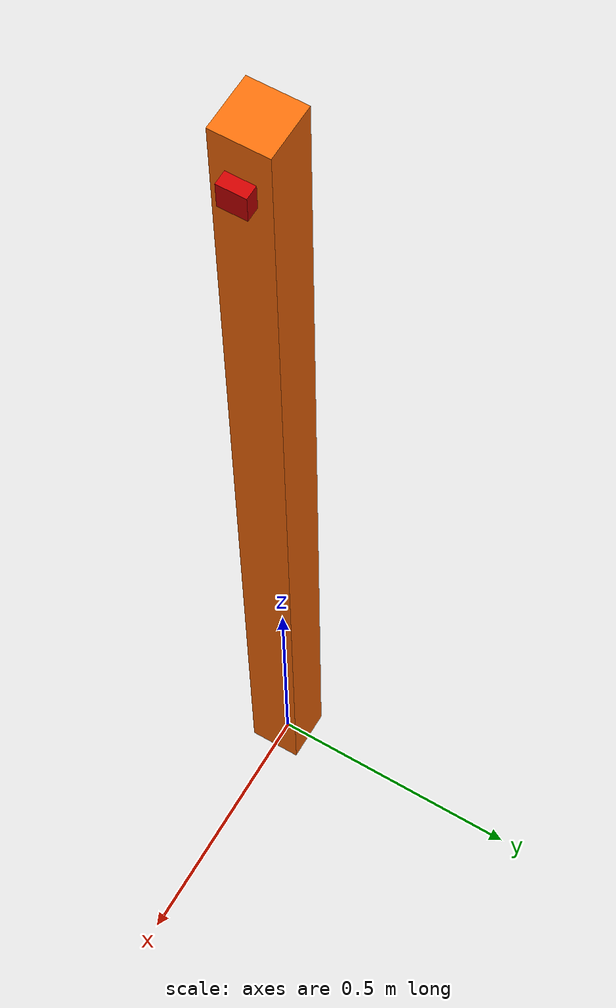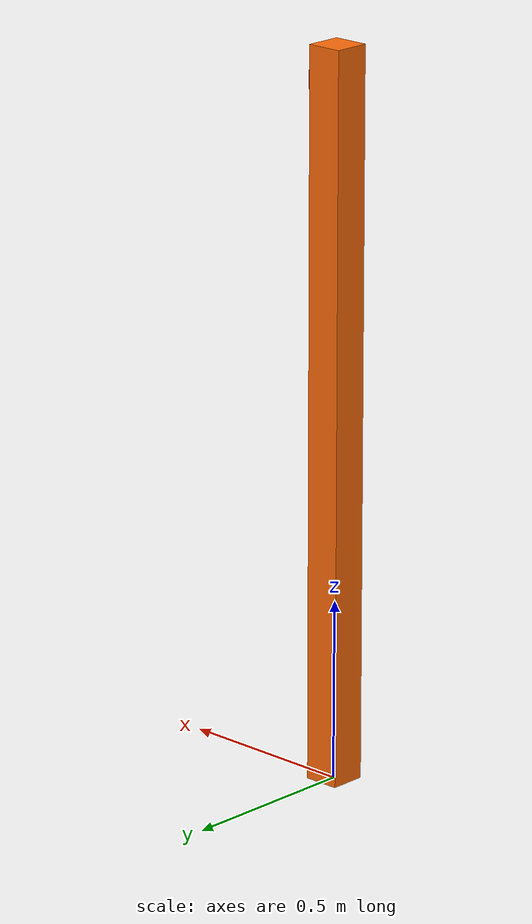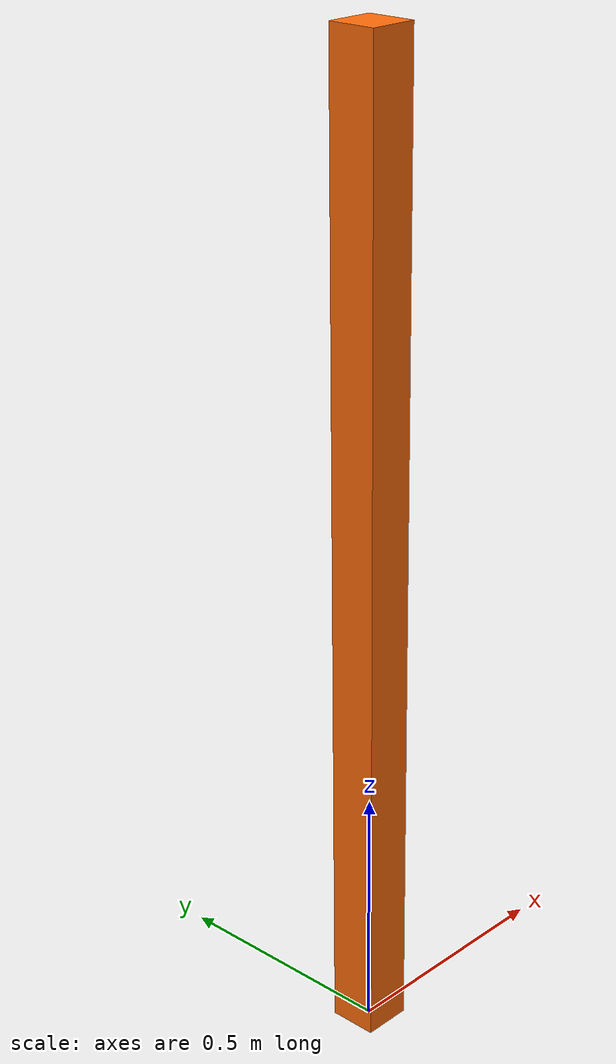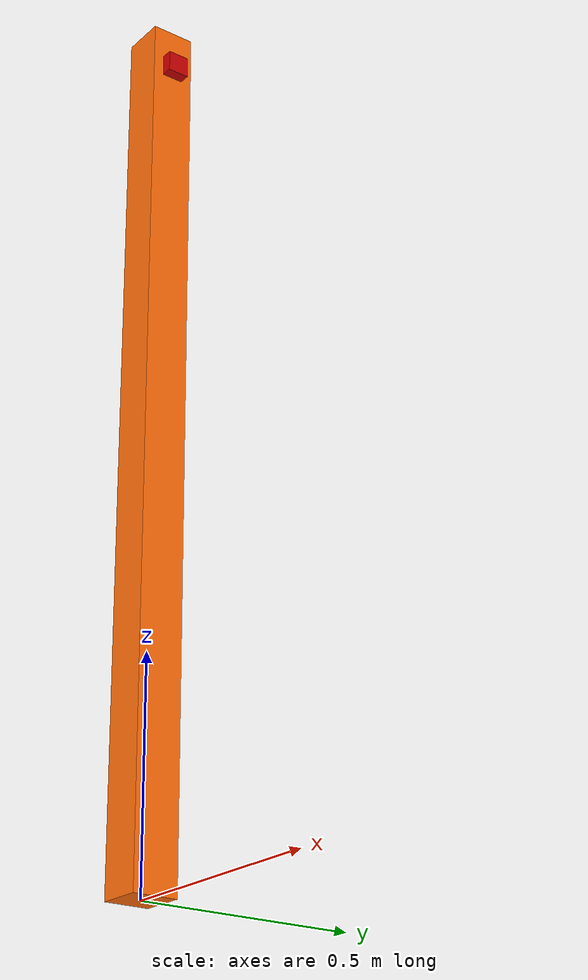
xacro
<?xml version="1.0"?>
<!-- Revolute-Revolute Manipulator -->
<robot name="rrbot" xmlns:xacro="http://www.ros.org/wiki/xacro">

  <!-- Constants for robot dimensions -->
  <xacro:property name="PI" value="3.1415926535897931"/>
  <xacro:property name="mass" value="1" /> <!-- arbitrary value for mass -->
  <xacro:property name="width" value="0.1" /> <!-- Square dimensions (widthxwidth) of beams -->
  <xacro:property name="height1" value="2" /> <!-- Link 1 -->
  <xacro:property name="camera_link" value="0.05" /> <!-- Size of square 'camera' box -->
  <xacro:property name="axel_offset" value="0.05" /> <!-- Space btw top of beam and the each joint -->

  <!-- Used for fixing robot to Gazebo 'base_link' -->
  <link name="world"/>

  <joint name="fixed" type="fixed">
    <parent link="world"/>
    <child link="link1"/>
  </joint>

  <!-- Base Link -->
  <link name="link1">
    <collision>
      <origin xyz="0 0 ${height1/2}" rpy="0 0 0"/>
      <geometry>
	<box size="${width} ${width} ${height1}"/>
      </geometry>
    </collision>

    <visual>
      <origin xyz="0 0 ${height1/2}" rpy="0 0 0"/>
      <geometry>
	<box size="${width} ${width} ${height1}"/>
      </geometry>
      <material name="orange"/>
    </visual>

    <inertial>
      <origin xyz="0 0 ${height1/2}" rpy="0 0 0"/>
      <mass value="${mass}"/>
      <inertia
	  ixx="${mass / 12.0 * (width*width + height1*height1)}" ixy="0.0" ixz="0.0"
	  iyy="${mass / 12.0 * (height1*height1 + width*width)}" iyz="0.0"
	  izz="${mass / 12.0 * (width*width + width*width)}"/>
    </inertial>
  </link>

  <joint name="camera_joint" type="fixed">
    <axis xyz="0 1 0" />
    <origin xyz="${camera_link} 0 ${height1 - axel_offset*2}" rpy="0 0 0"/>
    <parent link="link1"/>
    <child link="camera_link"/>
  </joint>

  <!-- Camera -->
  <link name="camera_link">
    <collision>
      <origin xyz="0 0 0" rpy="0 0 0"/>
      <geometry>
	<box size="${camera_link} ${camera_link} ${camera_link}"/>
      </geometry>
    </collision>

    <visual>
      <origin xyz="0 0 0" rpy="0 0 0"/>
      <geometry>
	<box size="${camera_link} ${camera_link} ${camera_link}"/>
      </geometry>
      <material name="red"/>
    </visual>

    <inertial>
      <mass value="1e-5" />
      <origin xyz="0 0 0" rpy="0 0 0"/>
      <inertia ixx="1e-6" ixy="0" ixz="0" iyy="1e-6" iyz="0" izz="1e-6" />
    </inertial>
  </link>

  <!-- generate an optical frame http://www.ros.org/reps/rep-0103.html#suffix-frames
      so that ros and opencv can operate on the camera frame correctly -->
  <joint name="camera_optical_joint" type="fixed">
    <!-- these values have to be these values otherwise the gazebo camera image
        won't be aligned properly with the frame it is supposedly originating from -->
    <origin xyz="0 0 0" rpy="${-pi/2} 0 ${-pi/2}"/>
    <parent link="camera_link"/>
    <child link="camera_link_optical"/>
  </joint>

  <link name="camera_link_optical">
  </link>

  <!-- camera -->
  <gazebo reference="camera_link">
    <sensor type="camera" name="camera1">
      <update_rate>30.0</update_rate>
      <camera name="head">
        <horizontal_fov>1.3962634</horizontal_fov>
        <image>
          <width>800</width>
          <height>800</height>
          <format>R8G8B8</format>
        </image>
        <clip>
          <near>0.02</near>
          <far>300</far>
        </clip>
        <noise>
          <type>gaussian</type>
          <!-- Noise is sampled independently per pixel on each frame.
               That pixel's noise value is added to each of its color
               channels, which at that point lie in the range [0,1]. -->
          <mean>0.0</mean>
          <stddev>0.007</stddev>
        </noise>
      </camera>
      <plugin name="camera_controller" filename="libgazebo_ros_camera.so">
        <alwaysOn>true</alwaysOn>
        <updateRate>0.0</updateRate>
        <imageTopicName>image_raw</imageTopicName>
        <cameraInfoTopicName>camera_info</cameraInfoTopicName>
        <frameName>camera_link_optical</frameName>
        <!-- setting hackBaseline to anything but 0.0 will cause a misalignment
            between the gazebo sensor image and the frame it is supposed to
            be attached to -->
        <hackBaseline>0.0</hackBaseline>
        <distortionK1>0.0</distortionK1>
        <distortionK2>0.0</distortionK2>
        <distortionK3>0.0</distortionK3>
        <distortionT1>0.0</distortionT1>
        <distortionT2>0.0</distortionT2>
        <CxPrime>0</CxPrime>
        <Cx>0.0</Cx>
        <Cy>0.0</Cy>
        <focalLength>0.0</focalLength>
      </plugin>
    </sensor>
  </gazebo>

  <material name="black">
    <color rgba="0.0 0.0 0.0 1.0"/>
  </material>

  <material name="blue">
    <color rgba="0.0 0.0 0.8 1.0"/>
  </material>

  <material name="green">
    <color rgba="0.0 0.8 0.0 1.0"/>
  </material>

  <material name="grey">
    <color rgba="0.2 0.2 0.2 1.0"/>
  </material>

  <material name="orange">
    <color rgba="${255/255} ${108/255} ${10/255} 1.0"/>
  </material>

  <material name="brown">
    <color rgba="${222/255} ${207/255} ${195/255} 1.0"/>
  </material>

  <material name="red">
    <color rgba="0.8 0.0 0.0 1.0"/>
  </material>

  <material name="white">
    <color rgba="1.0 1.0 1.0 1.0"/>
  </material>

</robot>
